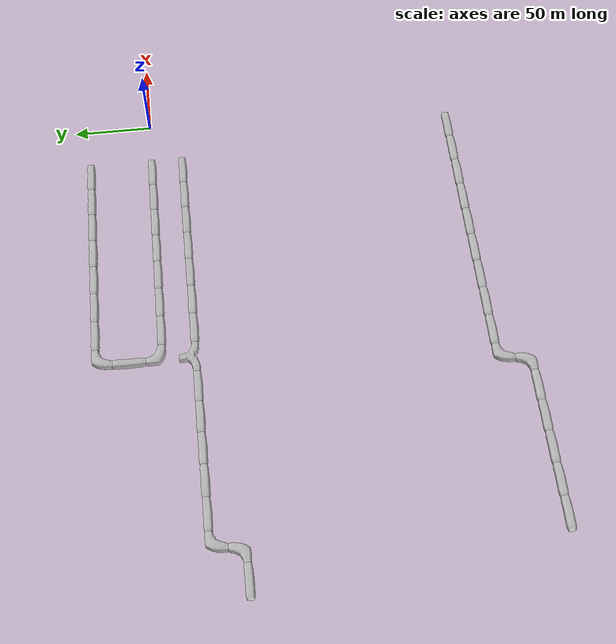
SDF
<sdf version="1.6">
 <world name="cave_4000_64">
  <include>
   <static>true</static>
   <name>cave_-1_-10</name>
   <pose>-20 -200 0 0 0 1.5707963267948966</pose>
   <uri>model://cave_straight_20m</uri>
  </include>
  <include>
   <static>true</static>
   <name>cave_-2_-10</name>
   <pose>-40 -200 0 0 0 1.5707963267948966</pose>
   <uri>model://cave_straight_20m</uri>
  </include>
  <include>
   <static>true</static>
   <name>cave_-3_-10</name>
   <pose>-60 -200 0 0 0 1.5707963267948966</pose>
   <uri>model://cave_straight_20m</uri>
  </include>
  <include>
   <static>true</static>
   <name>cave_-4_-10</name>
   <pose>-80 -200 0 0 0 1.5707963267948966</pose>
   <uri>model://cave_straight_20m</uri>
  </include>
  <include>
   <static>true</static>
   <name>cave_-5_-10</name>
   <pose>-100 -200 0 0 0 1.5707963267948966</pose>
   <uri>model://cave_straight_20m</uri>
  </include>
  <include>
   <static>true</static>
   <name>cave_-6_-10</name>
   <pose>-120 -200 0 0 0 1.5707963267948966</pose>
   <uri>model://cave_straight_20m</uri>
  </include>
  <include>
   <static>true</static>
   <name>cave_-7_-10</name>
   <pose>-140 -200 0 0 0 1.5707963267948966</pose>
   <uri>model://cave_straight_20m</uri>
  </include>
  <include>
   <static>true</static>
   <name>cave_-8_-10</name>
   <pose>-160 -200 0 0 0 1.5707963267948966</pose>
   <uri>model://cave_straight_20m</uri>
  </include>
  <include>
   <static>true</static>
   <name>cave_-9_-10</name>
   <pose>-180 -200 0 0 0 1.5707963267948966</pose>
   <uri>model://cave_straight_20m</uri>
  </include>
  <include>
   <static>true</static>
   <name>cave_-10_-10</name>
   <pose>-200 -200 0 0 0 -1.5707963267948966</pose>
   <uri>model://cave_L_20m</uri>
  </include>
  <include>
   <static>true</static>
   <name>cave_-10_-11</name>
   <pose>-200 -220 0 0 0 1.5707963267948966</pose>
   <uri>model://cave_L_20m</uri>
  </include>
  <include>
   <static>true</static>
   <name>cave_-11_-11</name>
   <pose>-220 -220 0 0 0 1.5707963267948966</pose>
   <uri>model://cave_straight_20m</uri>
  </include>
  <include>
   <static>true</static>
   <name>cave_-12_-11</name>
   <pose>-240 -220 0 0 0 1.5707963267948966</pose>
   <uri>model://cave_straight_20m</uri>
  </include>
  <include>
   <static>true</static>
   <name>cave_-13_-11</name>
   <pose>-260 -220 0 0 0 1.5707963267948966</pose>
   <uri>model://cave_straight_20m</uri>
  </include>
  <include>
   <static>true</static>
   <name>cave_-14_-11</name>
   <pose>-280 -220 0 0 0 1.5707963267948966</pose>
   <uri>model://cave_straight_20m</uri>
  </include>
  <include>
   <static>true</static>
   <name>cave_-15_-11</name>
   <pose>-300 -220 0 0 0 1.5707963267948966</pose>
   <uri>model://cave_straight_20m</uri>
  </include>
  <include>
   <static>true</static>
   <name>cave_-2_-1</name>
   <pose>-40 -20 0 0 0 1.5707963267948966</pose>
   <uri>model://cave_straight_20m</uri>
  </include>
  <include>
   <static>true</static>
   <name>cave_-3_-1</name>
   <pose>-60 -20 0 0 0 1.5707963267948966</pose>
   <uri>model://cave_straight_20m</uri>
  </include>
  <include>
   <static>true</static>
   <name>cave_-4_-1</name>
   <pose>-80 -20 0 0 0 1.5707963267948966</pose>
   <uri>model://cave_straight_20m</uri>
  </include>
  <include>
   <static>true</static>
   <name>cave_-5_-1</name>
   <pose>-100 -20 0 0 0 1.5707963267948966</pose>
   <uri>model://cave_straight_20m</uri>
  </include>
  <include>
   <static>true</static>
   <name>cave_-6_-1</name>
   <pose>-120 -20 0 0 0 1.5707963267948966</pose>
   <uri>model://cave_straight_20m</uri>
  </include>
  <include>
   <static>true</static>
   <name>cave_-7_-1</name>
   <pose>-140 -20 0 0 0 1.5707963267948966</pose>
   <uri>model://cave_straight_20m</uri>
  </include>
  <include>
   <static>true</static>
   <name>cave_-8_-1</name>
   <pose>-160 -20 0 0 0 1.5707963267948966</pose>
   <uri>model://cave_straight_20m</uri>
  </include>
  <include>
   <static>true</static>
   <name>cave_-9_-1</name>
   <pose>-180 -20 0 0 0 0.0</pose>
   <uri>model://cave_3way_20m</uri>
  </include>
  <include>
   <static>true</static>
   <name>cave_-10_-1</name>
   <pose>-200 -20 0 0 0 1.5707963267948966</pose>
   <uri>model://cave_straight_20m</uri>
  </include>
  <include>
   <static>true</static>
   <name>cave_-11_-1</name>
   <pose>-220 -20 0 0 0 1.5707963267948966</pose>
   <uri>model://cave_straight_20m</uri>
  </include>
  <include>
   <static>true</static>
   <name>cave_-12_-1</name>
   <pose>-240 -20 0 0 0 1.5707963267948966</pose>
   <uri>model://cave_straight_20m</uri>
  </include>
  <include>
   <static>true</static>
   <name>cave_-13_-1</name>
   <pose>-260 -20 0 0 0 1.5707963267948966</pose>
   <uri>model://cave_straight_20m</uri>
  </include>
  <include>
   <static>true</static>
   <name>cave_-14_-1</name>
   <pose>-280 -20 0 0 0 1.5707963267948966</pose>
   <uri>model://cave_straight_20m</uri>
  </include>
  <include>
   <static>true</static>
   <name>cave_-15_-1</name>
   <pose>-300 -20 0 0 0 -1.5707963267948966</pose>
   <uri>model://cave_L_20m</uri>
  </include>
  <include>
   <static>true</static>
   <name>cave_-15_-2</name>
   <pose>-300 -40 0 0 0 1.5707963267948966</pose>
   <uri>model://cave_L_20m</uri>
  </include>
  <include>
   <static>true</static>
   <name>cave_-16_-2</name>
   <pose>-320 -40 0 0 0 1.5707963267948966</pose>
   <uri>model://cave_straight_20m</uri>
  </include>
  <include>
   <static>true</static>
   <name>cave_-2_0</name>
   <pose>-40 0 0 0 0 1.5707963267948966</pose>
   <uri>model://cave_straight_20m</uri>
  </include>
  <include>
   <static>true</static>
   <name>cave_-3_0</name>
   <pose>-60 0 0 0 0 1.5707963267948966</pose>
   <uri>model://cave_straight_20m</uri>
  </include>
  <include>
   <static>true</static>
   <name>cave_-4_0</name>
   <pose>-80 0 0 0 0 1.5707963267948966</pose>
   <uri>model://cave_straight_20m</uri>
  </include>
  <include>
   <static>true</static>
   <name>cave_-5_0</name>
   <pose>-100 0 0 0 0 1.5707963267948966</pose>
   <uri>model://cave_straight_20m</uri>
  </include>
  <include>
   <static>true</static>
   <name>cave_-6_0</name>
   <pose>-120 0 0 0 0 1.5707963267948966</pose>
   <uri>model://cave_straight_20m</uri>
  </include>
  <include>
   <static>true</static>
   <name>cave_-7_0</name>
   <pose>-140 0 0 0 0 1.5707963267948966</pose>
   <uri>model://cave_straight_20m</uri>
  </include>
  <include>
   <static>true</static>
   <name>cave_-8_0</name>
   <pose>-160 0 0 0 0 1.5707963267948966</pose>
   <uri>model://cave_straight_20m</uri>
  </include>
  <include>
   <static>true</static>
   <name>cave_-9_0</name>
   <pose>-180 0 0 0 0 0.0</pose>
   <uri>model://cave_L_20m</uri>
  </include>
  <include>
   <static>true</static>
   <name>cave_-9_1</name>
   <pose>-180 20 0 0 0 0.0</pose>
   <uri>model://cave_straight_20m</uri>
  </include>
  <include>
   <static>true</static>
   <name>cave_-9_2</name>
   <pose>-180 40 0 0 0 -1.5707963267948966</pose>
   <uri>model://cave_L_20m</uri>
  </include>
  <include>
   <static>true</static>
   <name>cave_-8_2</name>
   <pose>-160 40 0 0 0 1.5707963267948966</pose>
   <uri>model://cave_straight_20m</uri>
  </include>
  <include>
   <static>true</static>
   <name>cave_-7_2</name>
   <pose>-140 40 0 0 0 1.5707963267948966</pose>
   <uri>model://cave_straight_20m</uri>
  </include>
  <include>
   <static>true</static>
   <name>cave_-6_2</name>
   <pose>-120 40 0 0 0 1.5707963267948966</pose>
   <uri>model://cave_straight_20m</uri>
  </include>
  <include>
   <static>true</static>
   <name>cave_-5_2</name>
   <pose>-100 40 0 0 0 1.5707963267948966</pose>
   <uri>model://cave_straight_20m</uri>
  </include>
  <include>
   <static>true</static>
   <name>cave_-4_2</name>
   <pose>-80 40 0 0 0 1.5707963267948966</pose>
   <uri>model://cave_straight_20m</uri>
  </include>
  <include>
   <static>true</static>
   <name>cave_-3_2</name>
   <pose>-60 40 0 0 0 1.5707963267948966</pose>
   <uri>model://cave_straight_20m</uri>
  </include>
  <include>
   <static>true</static>
   <name>cave_-2_2</name>
   <pose>-40 40 0 0 0 1.5707963267948966</pose>
   <uri>model://cave_straight_20m</uri>
  </include>
 </world>
</sdf>
